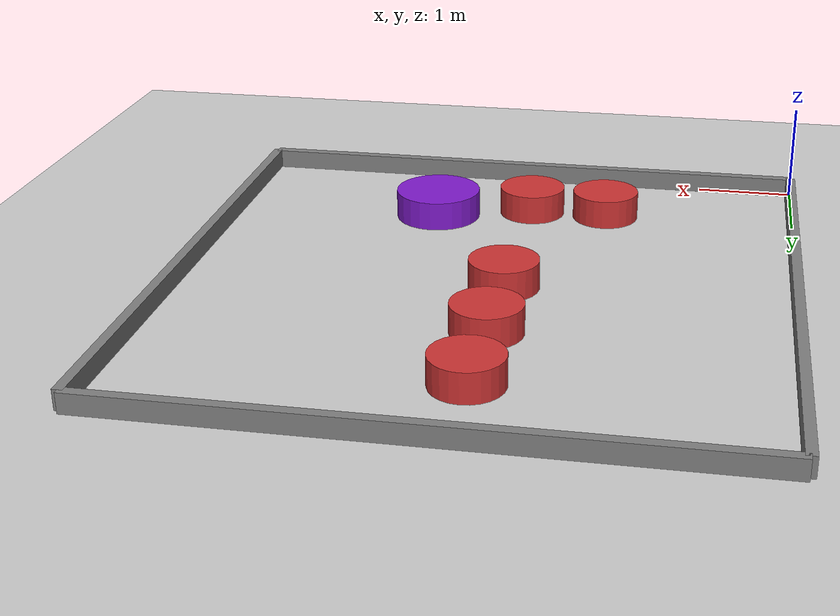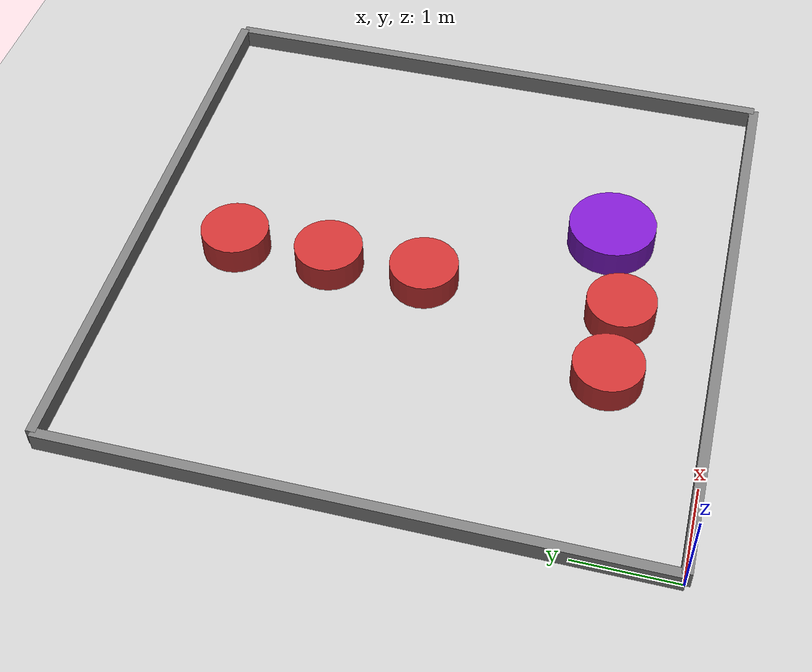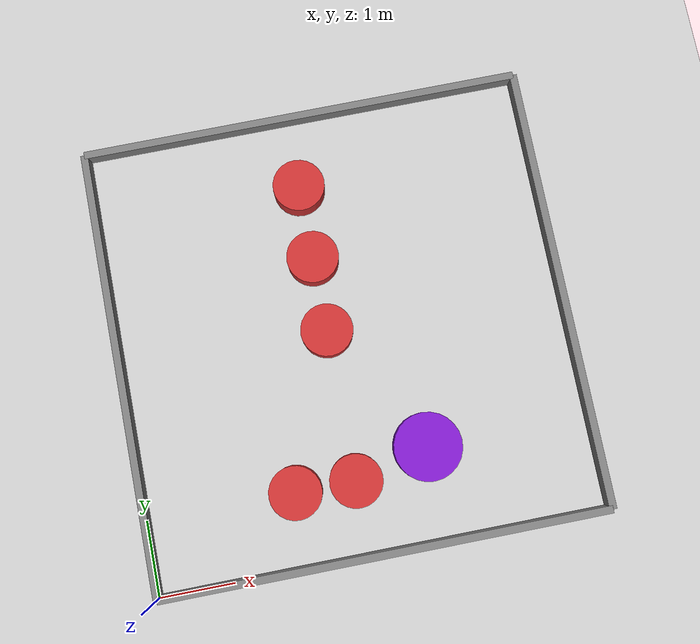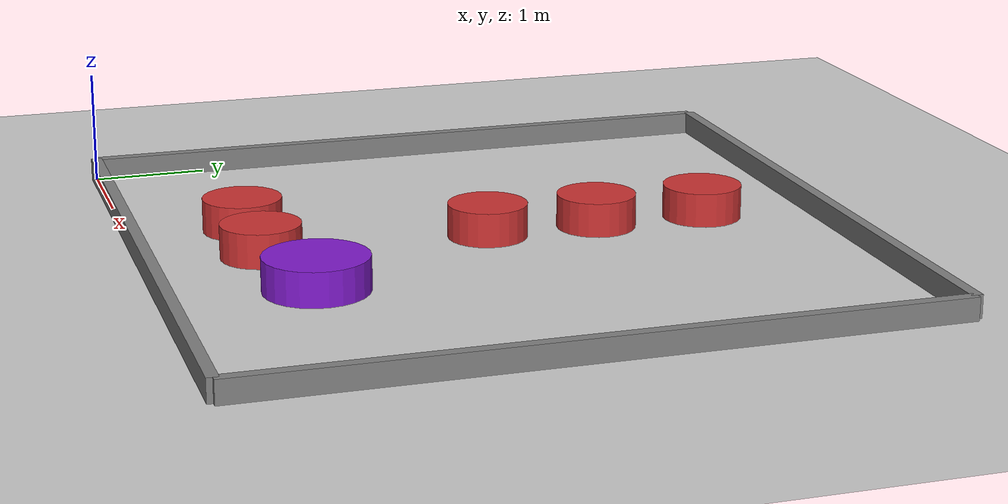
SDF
<?xml version="1.0" ?>
<sdf version="1.6">
  <world name="planning_world_static">

    <include>
      <uri>model://ground_plane</uri>
    </include>
    <include>
      <uri>model://sun</uri>
    </include>

    <!-- Bottom wall -->
    <model name="wall_bottom">
      <static>true</static>
      <pose>3.0 0.0 0.1 0 0 0</pose>
      <link name="link">
        <collision name="collision">
          <geometry><box><size>6.0 0.1 0.2</size></box></geometry>
        </collision>
        <visual name="visual">
          <geometry><box><size>6.0 0.1 0.2</size></box></geometry>
          <material><ambient>0.5 0.5 0.5 1</ambient></material>
        </visual>
      </link>
    </model>

    <!-- Top wall -->
    <model name="wall_top">
      <static>true</static>
      <pose>3.0 6.0 0.1 0 0 0</pose>
      <link name="link">
        <collision name="collision">
          <geometry><box><size>6.0 0.1 0.2</size></box></geometry>
        </collision>
        <visual name="visual">
          <geometry><box><size>6.0 0.1 0.2</size></box></geometry>
          <material><ambient>0.5 0.5 0.5 1</ambient></material>
        </visual>
      </link>
    </model>

    <!-- Left wall -->
    <model name="wall_left">
      <static>true</static>
      <pose>0.0 3.0 0.1 0 0 0</pose>
      <link name="link">
        <collision name="collision">
          <geometry><box><size>0.1 6.0 0.2</size></box></geometry>
        </collision>
        <visual name="visual">
          <geometry><box><size>0.1 6.0 0.2</size></box></geometry>
          <material><ambient>0.5 0.5 0.5 1</ambient></material>
        </visual>
      </link>
    </model>

    <!-- Right wall -->
    <model name="wall_right">
      <static>true</static>
      <pose>6.0 3.0 0.1 0 0 0</pose>
      <link name="link">
        <collision name="collision">
          <geometry><box><size>0.1 6.0 0.2</size></box></geometry>
        </collision>
        <visual name="visual">
          <geometry><box><size>0.1 6.0 0.2</size></box></geometry>
          <material><ambient>0.5 0.5 0.5 1</ambient></material>
        </visual>
      </link>
    </model>

    <!-- Wall obstacle 1 — top of wall -->
    <model name="obstacle_1">
      <static>true</static>
      <pose>2.8 5.0 0.15 0 0 0</pose>
      <link name="link">
        <collision name="collision">
          <geometry><cylinder><radius>0.35</radius><length>0.3</length></cylinder></geometry>
        </collision>
        <visual name="visual">
          <geometry><cylinder><radius>0.35</radius><length>0.3</length></cylinder></geometry>
          <material><ambient>0.8 0.2 0.2 1</ambient></material>
        </visual>
      </link>
    </model>

    <!-- Wall obstacle 2 -->
    <model name="obstacle_2">
      <static>true</static>
      <pose>2.8 4.0 0.15 0 0 0</pose>
      <link name="link">
        <collision name="collision">
          <geometry><cylinder><radius>0.35</radius><length>0.3</length></cylinder></geometry>
        </collision>
        <visual name="visual">
          <geometry><cylinder><radius>0.35</radius><length>0.3</length></cylinder></geometry>
          <material><ambient>0.8 0.2 0.2 1</ambient></material>
        </visual>
      </link>
    </model>

    <!-- Wall obstacle 3 — directly on diagonal path, forces detour -->
    <model name="obstacle_3">
      <static>true</static>
      <pose>2.8 3.0 0.15 0 0 0</pose>
      <link name="link">
        <collision name="collision">
          <geometry><cylinder><radius>0.35</radius><length>0.3</length></cylinder></geometry>
        </collision>
        <visual name="visual">
          <geometry><cylinder><radius>0.35</radius><length>0.3</length></cylinder></geometry>
          <material><ambient>0.8 0.2 0.2 1</ambient></material>
        </visual>
      </link>
    </model>

    <!-- Wall obstacle 4 — bottom of wall, gap above this at y≈2.0 -->
    <model name="obstacle_4">
      <static>true</static>
      <pose>2.8 1.0 0.15 0 0 0</pose>
      <link name="link">
        <collision name="collision">
          <geometry><cylinder><radius>0.35</radius><length>0.3</length></cylinder></geometry>
        </collision>
        <visual name="visual">
          <geometry><cylinder><radius>0.35</radius><length>0.3</length></cylinder></geometry>
          <material><ambient>0.8 0.2 0.2 1</ambient></material>
        </visual>
      </link>
    </model>

    <!-- Wall obstacle 5 -->
    <model name="obstacle_5">
      <static>true</static>
      <pose>2.0 1.0 0.15 0 0 0</pose>
      <link name="link">
        <collision name="collision">
          <geometry><cylinder><radius>0.35</radius><length>0.3</length></cylinder></geometry>
        </collision>
        <visual name="visual">
          <geometry><cylinder><radius>0.35</radius><length>0.3</length></cylinder></geometry>
          <material><ambient>0.8 0.2 0.2 1</ambient></material>
        </visual>
      </link>
    </model>

    <!-- Guardian — blocks direct exit after gap, forces second routing decision -->
    <model name="obstacle_6">
      <static>true</static>
      <pose>3.8 1.25 0.15 0 0 0</pose>
      <link name="link">
        <collision name="collision">
          <geometry><cylinder><radius>0.45</radius><length>0.3</length></cylinder></geometry>
        </collision>
        <visual name="visual">
          <geometry><cylinder><radius>0.45</radius><length>0.3</length></cylinder></geometry>
          <material><ambient>0.5 0.1 0.8 1</ambient></material>
        </visual>
      </link>
    </model>

  </world>
</sdf>
